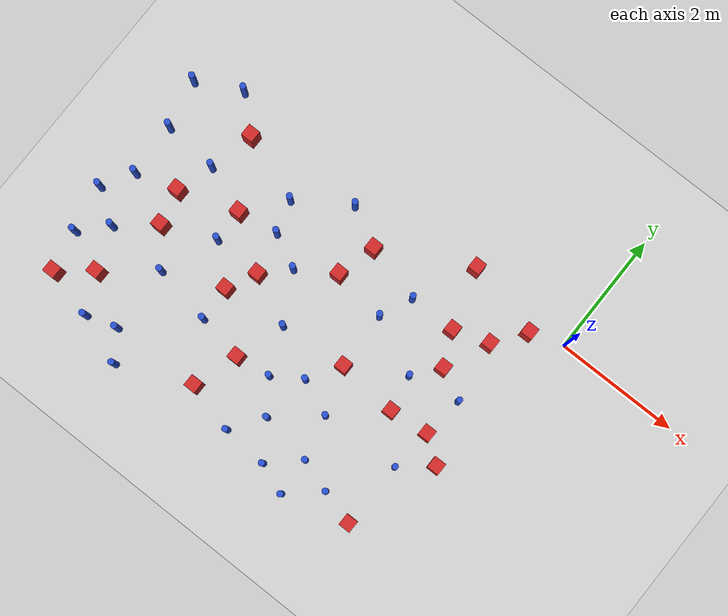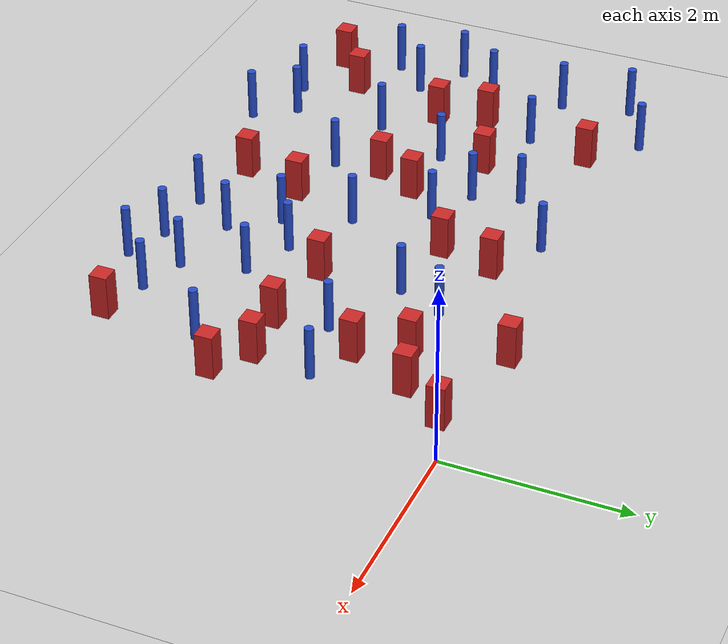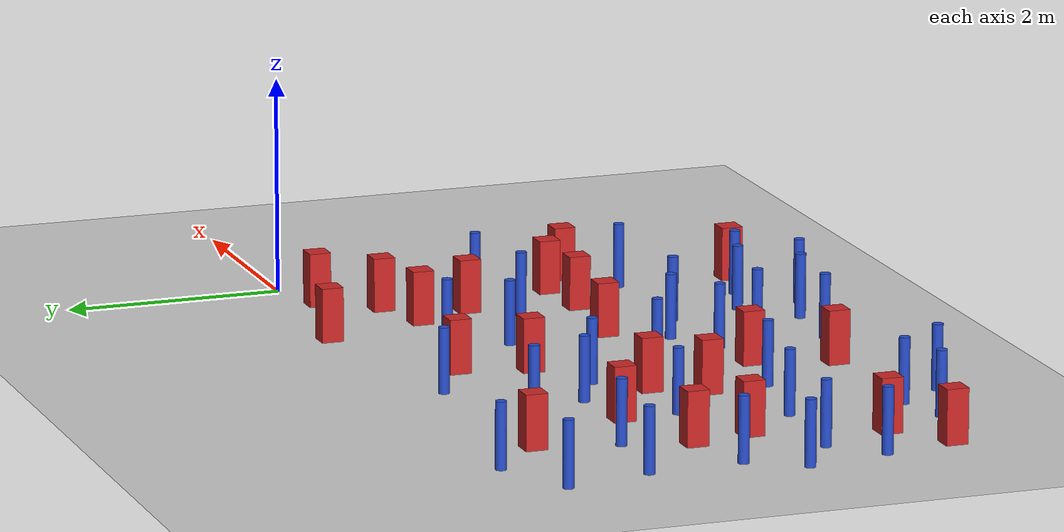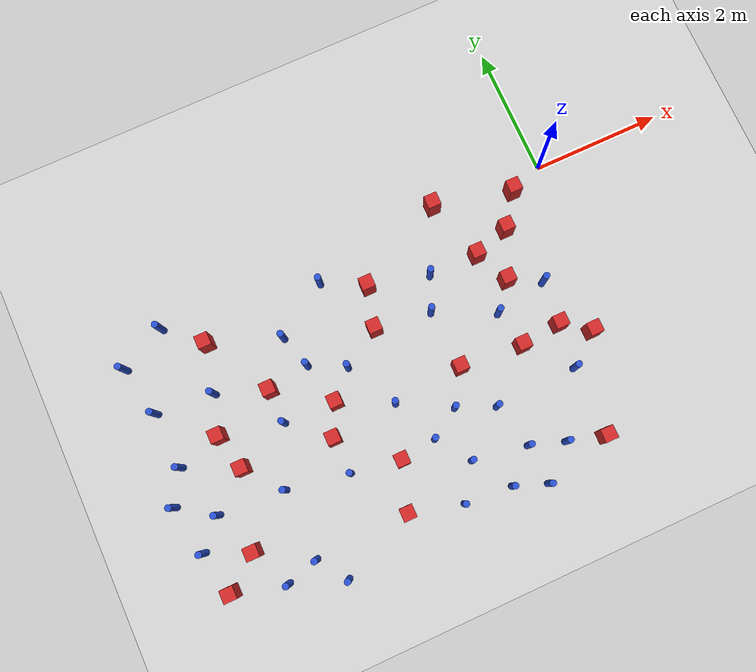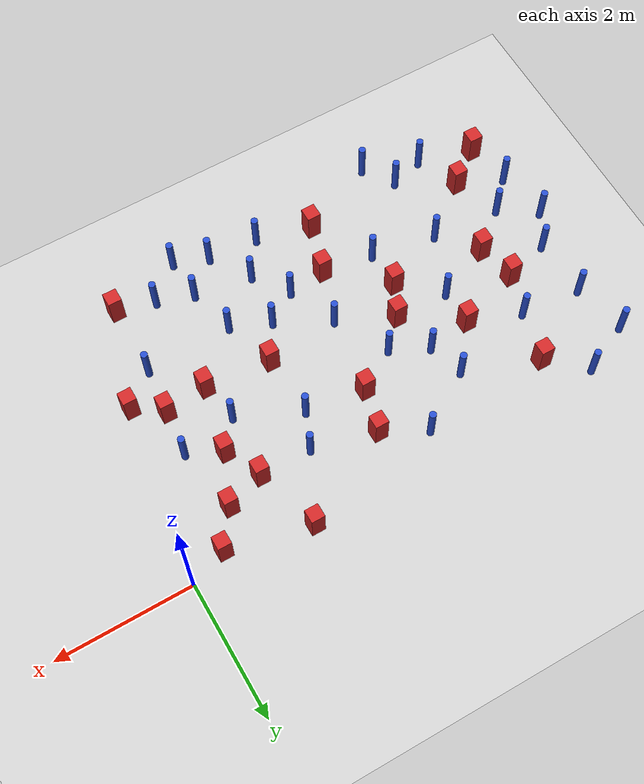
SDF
<sdf version="1.6">
 <world name="default">
  <model name="ground_plane">
   <static>1</static>
   <link name="link">
    <collision name="collision">
     <geometry><plane><normal>0 0 1</normal><size>100 100</size></plane></geometry>
     <surface><friction><ode><mu>100</mu><mu2>50</mu2></ode></friction></surface>
    </collision>
    <visual name="visual">
     <cast_shadows>0</cast_shadows>
     <geometry><plane><normal>0 0 1</normal><size>100 100</size></plane></geometry>
     <material>
      <ambient>1.0 1.0 1.0 1.0</ambient>
      <diffuse>0.8 0.8 0.8 1.0</diffuse>
      <specular>0.01 0.01 0.01 1.000000</specular>
     </material>
    </visual>
   </link>
  </model>
  <model name="pole_obstacle1">
   <static>true</static>
   <pose>-2.15343908815 -3.05800614078 -3.09024884793e-07 -7.19054271912e-07 -2.11315075144e-07 -1.93935509271e-07</pose>
   <link name="link">
    <pose>0 0 0.3 0 -0 0</pose>
    <inertial>
     <mass>1</mass>
     <inertia><ixx>0.145833</ixx><ixy>0</ixy><ixz>0</ixz><iyy>0.145833</iyy><iyz>0</iyz><izz>0.125</izz></inertia>
    </inertial>
    <collision name="collision">
     <geometry><cylinder><radius>0.05</radius><length>.6</length></cylinder></geometry>
    </collision>
    <visual name="visual">
     <geometry><cylinder><radius>0.05</radius><length>.6</length></cylinder></geometry>
     <material>
      <script><name>Gazebo/Blue</name><uri>file://media/materials/scripts/gazebo.material</uri></script>
     </material>
    </visual>
   </link>
  </model>
  <model name="pole_obstacle4">
   <static>true</static>
   <pose>-5.84009545535 -1.18611742266 -3.09024884793e-07 -7.19054271912e-07 -2.11315075124e-07 -1.93935509261e-07</pose>
   <link name="link">
    <pose>0 0 0.3 0 -0 0</pose>
    <inertial>
     <mass>1</mass>
     <inertia><ixx>0.145833</ixx><ixy>0</ixy><ixz>0</ixz><iyy>0.145833</iyy><iyz>0</iyz><izz>0.125</izz></inertia>
    </inertial>
    <collision name="collision">
     <geometry><cylinder><radius>0.05</radius><length>.6</length></cylinder></geometry>
    </collision>
    <visual name="visual">
     <geometry><cylinder><radius>0.05</radius><length>.6</length></cylinder></geometry>
     <material>
      <script><name>Gazebo/Blue</name><uri>file://media/materials/scripts/gazebo.material</uri></script>
     </material>
    </visual>
   </link>
  </model>
  <model name="square_post_obstacle3">
   <static>true</static>
   <pose>-1.75697244026 0.0820095088435 -4.36207812815e-07 3.75137919937e-06 9.77721102514e-07 2.47381364184e-05</pose>
   <link name="link">
    <pose>0 0 0.25 0 -0 0</pose>
    <inertial>
     <mass>100</mass>
     <inertia>
      <ixx>0.166667</ixx>
      <ixy>0</ixy>
      <ixz>0</ixz>
      <iyy>0.166667</iyy>
      <iyz>0</iyz>
      <izz>0.166667</izz>
     </inertia>
    </inertial>
    <collision name="collision"><geometry><box><size>.2 .2 .5</size></box></geometry></collision>
    <visual name="visual">
     <geometry><box><size>.2 .2 .5</size></box></geometry>
     <material>
      <script><name>Gazebo/Red</name><uri>file://media/materials/scripts/gazebo.material</uri></script>
     </material>
    </visual>
   </link>
  </model>
  <model name="square_post_obstacle6">
   <static>true</static>
   <pose>-3.31438618754 -1.2716206285 -4.36207812815e-07 3.75137919937e-06 9.77721102514e-07 2.47381364184e-05</pose>
   <link name="link">
    <pose>0 0 0.25 0 -0 0</pose>
    <inertial>
     <mass>100</mass>
     <inertia>
      <ixx>0.166667</ixx>
      <ixy>0</ixy>
      <ixz>0</ixz>
      <iyy>0.166667</iyy>
      <iyz>0</iyz>
      <izz>0.166667</izz>
     </inertia>
    </inertial>
    <collision name="collision"><geometry><box><size>.2 .2 .5</size></box></geometry></collision>
    <visual name="visual">
     <geometry><box><size>.2 .2 .5</size></box></geometry>
     <material>
      <script><name>Gazebo/Red</name><uri>file://media/materials/scripts/gazebo.material</uri></script>
     </material>
    </visual>
   </link>
  </model>
  <model name="pole_obstacle11">
   <static>true</static>
   <pose>-6.18619844787 0.0251924821739 -3.09024884793e-07 -7.19054271912e-07 -2.11315075117e-07 -1.93935509257e-07</pose>
   <link name="link">
    <pose>0 0 0.3 0 -0 0</pose>
    <inertial>
     <mass>1</mass>
     <inertia><ixx>0.145833</ixx><ixy>0</ixy><ixz>0</ixz><iyy>0.145833</iyy><iyz>0</iyz><izz>0.125</izz></inertia>
    </inertial>
    <collision name="collision">
     <geometry><cylinder><radius>0.05</radius><length>.6</length></cylinder></geometry>
    </collision>
    <visual name="visual">
     <geometry><cylinder><radius>0.05</radius><length>.6</length></cylinder></geometry>
     <material>
      <script><name>Gazebo/Blue</name><uri>file://media/materials/scripts/gazebo.material</uri></script>
     </material>
    </visual>
   </link>
  </model>
  <model name="square_post_obstacle8">
   <static>true</static>
   <pose>-3.14900808988 -0.646074387854 -4.36207812815e-07 3.75137919937e-06 9.77721102514e-07 2.47381364184e-05</pose>
   <link name="link">
    <pose>0 0 0.25 0 -0 0</pose>
    <inertial>
     <mass>100</mass>
     <inertia>
      <ixx>0.166667</ixx>
      <ixy>0</ixy>
      <ixz>0</ixz>
      <iyy>0.166667</iyy>
      <iyz>0</iyz>
      <izz>0.166667</izz>
     </inertia>
    </inertial>
    <collision name="collision"><geometry><box><size>.2 .2 .5</size></box></geometry></collision>
    <visual name="visual">
     <geometry><box><size>.2 .2 .5</size></box></geometry>
     <material>
      <script><name>Gazebo/Red</name><uri>file://media/materials/scripts/gazebo.material</uri></script>
     </material>
    </visual>
   </link>
  </model>
  <model name="pole_obstacle27">
   <static>true</static>
   <pose>-5.43413216333 -2.88898753709 -3.09024884793e-07 -7.19054271912e-07 -2.11315075144e-07 -1.93935509269e-07</pose>
   <link name="link">
    <pose>0 0 0.3 0 -0 0</pose>
    <inertial>
     <mass>1</mass>
     <inertia><ixx>0.145833</ixx><ixy>0</ixy><ixz>0</ixz><iyy>0.145833</iyy><iyz>0</iyz><izz>0.125</izz></inertia>
    </inertial>
    <collision name="collision">
     <geometry><cylinder><radius>0.05</radius><length>.6</length></cylinder></geometry>
    </collision>
    <visual name="visual">
     <geometry><cylinder><radius>0.05</radius><length>.6</length></cylinder></geometry>
     <material>
      <script><name>Gazebo/Blue</name><uri>file://media/materials/scripts/gazebo.material</uri></script>
     </material>
    </visual>
   </link>
  </model>
  <model name="pole_obstacle28">
   <static>true</static>
   <pose>-0.87431272571 -3.01375302715 -3.09024884793e-07 -7.19054271912e-07 -2.11315075129e-07 -1.93935509263e-07</pose>
   <link name="link">
    <pose>0 0 0.3 0 -0 0</pose>
    <inertial>
     <mass>1</mass>
     <inertia><ixx>0.145833</ixx><ixy>0</ixy><ixz>0</ixz><iyy>0.145833</iyy><iyz>0</iyz><izz>0.125</izz></inertia>
    </inertial>
    <collision name="collision">
     <geometry><cylinder><radius>0.05</radius><length>.6</length></cylinder></geometry>
    </collision>
    <visual name="visual">
     <geometry><cylinder><radius>0.05</radius><length>.6</length></cylinder></geometry>
     <material>
      <script><name>Gazebo/Blue</name><uri>file://media/materials/scripts/gazebo.material</uri></script>
     </material>
    </visual>
   </link>
  </model>
  <model name="square_post_obstacle19">
   <static>true</static>
   <pose>-1.43632241854 -2.39237902163 -4.36207812815e-07 3.75137919937e-06 9.77721102514e-07 2.47381364184e-05</pose>
   <link name="link">
    <pose>0 0 0.25 0 -0 0</pose>
    <inertial>
     <mass>100</mass>
     <inertia>
      <ixx>0.166667</ixx>
      <ixy>0</ixy>
      <ixz>0</ixz>
      <iyy>0.166667</iyy>
      <iyz>0</iyz>
      <izz>0.166667</izz>
     </inertia>
    </inertial>
    <collision name="collision"><geometry><box><size>.2 .2 .5</size></box></geometry></collision>
    <visual name="visual">
     <geometry><box><size>.2 .2 .5</size></box></geometry>
     <material>
      <script><name>Gazebo/Red</name><uri>file://media/materials/scripts/gazebo.material</uri></script>
     </material>
    </visual>
   </link>
  </model>
  <model name="square_post_obstacle20">
   <static>true</static>
   <pose>-3.73517956588 -3.18736815768 -4.36207812815e-07 3.75137919937e-06 9.77721102514e-07 2.47381364184e-05</pose>
   <link name="link">
    <pose>0 0 0.25 0 -0 0</pose>
    <inertial>
     <mass>100</mass>
     <inertia>
      <ixx>0.166667</ixx>
      <ixy>0</ixy>
      <ixz>0</ixz>
      <iyy>0.166667</iyy>
      <iyz>0</iyz>
      <izz>0.166667</izz>
     </inertia>
    </inertial>
    <collision name="collision"><geometry><box><size>.2 .2 .5</size></box></geometry></collision>
    <visual name="visual">
     <geometry><box><size>.2 .2 .5</size></box></geometry>
     <material>
      <script><name>Gazebo/Red</name><uri>file://media/materials/scripts/gazebo.material</uri></script>
     </material>
    </visual>
   </link>
  </model>
  <model name="square_post_obstacle23">
   <static>true</static>
   <pose>-4.27425139784 -2.02532687391 -4.36207812815e-07 3.75137919937e-06 9.77721102514e-07 2.47381364184e-05</pose>
   <link name="link">
    <pose>0 0 0.25 0 -0 0</pose>
    <inertial>
     <mass>100</mass>
     <inertia>
      <ixx>0.166667</ixx>
      <ixy>0</ixy>
      <ixz>0</ixz>
      <iyy>0.166667</iyy>
      <iyz>0</iyz>
      <izz>0.166667</izz>
     </inertia>
    </inertial>
    <collision name="collision"><geometry><box><size>.2 .2 .5</size></box></geometry></collision>
    <visual name="visual">
     <geometry><box><size>.2 .2 .5</size></box></geometry>
     <material>
      <script><name>Gazebo/Red</name><uri>file://media/materials/scripts/gazebo.material</uri></script>
     </material>
    </visual>
   </link>
  </model>
  <model name="square_post_obstacle30">
   <static>true</static>
   <pose>-1.22073646992 -1.41158479234 -4.36207812815e-07 3.75137919937e-06 9.77721102514e-07 2.47381364184e-05</pose>
   <link name="link">
    <pose>0 0 0.25 0 -0 0</pose>
    <inertial>
     <mass>100</mass>
     <inertia>
      <ixx>0.166667</ixx>
      <ixy>0</ixy>
      <ixz>0</ixz>
      <iyy>0.166667</iyy>
      <iyz>0</iyz>
      <izz>0.166667</izz>
     </inertia>
    </inertial>
    <collision name="collision"><geometry><box><size>.2 .2 .5</size></box></geometry></collision>
    <visual name="visual">
     <geometry><box><size>.2 .2 .5</size></box></geometry>
     <material>
      <script><name>Gazebo/Red</name><uri>file://media/materials/scripts/gazebo.material</uri></script>
     </material>
    </visual>
   </link>
  </model>
  <model name="pole_obstacle42">
   <static>true</static>
   <pose>-5.41304092149 -3.96565275115 -3.09024884793e-07 -7.19054271912e-07 -2.11315075139e-07 -1.93935509266e-07</pose>
   <link name="link">
    <pose>0 0 0.3 0 -0 0</pose>
    <inertial>
     <mass>1</mass>
     <inertia><ixx>0.145833</ixx><ixy>0</ixy><ixz>0</ixz><iyy>0.145833</iyy><iyz>0</iyz><izz>0.125</izz></inertia>
    </inertial>
    <collision name="collision">
     <geometry><cylinder><radius>0.05</radius><length>.6</length></cylinder></geometry>
    </collision>
    <visual name="visual">
     <geometry><cylinder><radius>0.05</radius><length>.6</length></cylinder></geometry>
     <material>
      <script><name>Gazebo/Blue</name><uri>file://media/materials/scripts/gazebo.material</uri></script>
     </material>
    </visual>
   </link>
  </model>
  <model name="square_post_obstacle32">
   <static>true</static>
   <pose>-0.547999389112 -0.199466882305 -4.36207812815e-07 3.75137919937e-06 9.77721102514e-07 2.47381364184e-05</pose>
   <link name="link">
    <pose>0 0 0.25 0 -0 0</pose>
    <inertial>
     <mass>100</mass>
     <inertia>
      <ixx>0.166667</ixx>
      <ixy>0</ixy>
      <ixz>0</ixz>
      <iyy>0.166667</iyy>
      <iyz>0</iyz>
      <izz>0.166667</izz>
     </inertia>
    </inertial>
    <collision name="collision"><geometry><box><size>.2 .2 .5</size></box></geometry></collision>
    <visual name="visual">
     <geometry><box><size>.2 .2 .5</size></box></geometry>
     <material>
      <script><name>Gazebo/Red</name><uri>file://media/materials/scripts/gazebo.material</uri></script>
     </material>
    </visual>
   </link>
  </model>
  <model name="square_post_obstacle34">
   <static>true</static>
   <pose>-2.40266135204 -2.30965475225 -4.36207812815e-07 3.75137919937e-06 9.77721102514e-07 2.47381364184e-05</pose>
   <link name="link">
    <pose>0 0 0.25 0 -0 0</pose>
    <inertial>
     <mass>100</mass>
     <inertia>
      <ixx>0.166667</ixx>
      <ixy>0</ixy>
      <ixz>0</ixz>
      <iyy>0.166667</iyy>
      <iyz>0</iyz>
      <izz>0.166667</izz>
     </inertia>
    </inertial>
    <collision name="collision"><geometry><box><size>.2 .2 .5</size></box></geometry></collision>
    <visual name="visual">
     <geometry><box><size>.2 .2 .5</size></box></geometry>
     <material>
      <script><name>Gazebo/Red</name><uri>file://media/materials/scripts/gazebo.material</uri></script>
     </material>
    </visual>
   </link>
  </model>
  <model name="pole_obstacle49">
   <static>true</static>
   <pose>-3.17294523156 -4.12871011493 -3.09024884793e-07 -7.19054271912e-07 -2.11315075134e-07 -1.93935509266e-07</pose>
   <link name="link">
    <pose>0 0 0.3 0 -0 0</pose>
    <inertial>
     <mass>1</mass>
     <inertia><ixx>0.145833</ixx><ixy>0</ixy><ixz>0</ixz><iyy>0.145833</iyy><iyz>0</iyz><izz>0.125</izz></inertia>
    </inertial>
    <collision name="collision">
     <geometry><cylinder><radius>0.05</radius><length>.6</length></cylinder></geometry>
    </collision>
    <visual name="visual">
     <geometry><cylinder><radius>0.05</radius><length>.6</length></cylinder></geometry>
     <material>
      <script><name>Gazebo/Blue</name><uri>file://media/materials/scripts/gazebo.material</uri></script>
     </material>
    </visual>
   </link>
  </model>
  <model name="square_post_obstacle41">
   <static>true</static>
   <pose>-6.68817704176 -3.88866527212 -4.36207812815e-07 3.75137919937e-06 9.77721102514e-07 2.47381364184e-05</pose>
   <link name="link">
    <pose>0 0 0.25 0 -0 0</pose>
    <inertial>
     <mass>100</mass>
     <inertia>
      <ixx>0.166667</ixx>
      <ixy>0</ixy>
      <ixz>0</ixz>
      <iyy>0.166667</iyy>
      <iyz>0</iyz>
      <izz>0.166667</izz>
     </inertia>
    </inertial>
    <collision name="collision"><geometry><box><size>.2 .2 .5</size></box></geometry></collision>
    <visual name="visual">
     <geometry><box><size>.2 .2 .5</size></box></geometry>
     <material>
      <script><name>Gazebo/Red</name><uri>file://media/materials/scripts/gazebo.material</uri></script>
     </material>
    </visual>
   </link>
  </model>
  <model name="pole_obstacle55">
   <static>true</static>
   <pose>-5.9029251032 -4.10988672549 -3.09024884793e-07 -7.19054271911e-07 -2.1131507516e-07 -1.93935509277e-07</pose>
   <link name="link">
    <pose>0 0 0.3 0 -0 0</pose>
    <inertial>
     <mass>1</mass>
     <inertia><ixx>0.145833</ixx><ixy>0</ixy><ixz>0</ixz><iyy>0.145833</iyy><iyz>0</iyz><izz>0.125</izz></inertia>
    </inertial>
    <collision name="collision">
     <geometry><cylinder><radius>0.05</radius><length>.6</length></cylinder></geometry>
    </collision>
    <visual name="visual">
     <geometry><cylinder><radius>0.05</radius><length>.6</length></cylinder></geometry>
     <material>
      <script><name>Gazebo/Blue</name><uri>file://media/materials/scripts/gazebo.material</uri></script>
     </material>
    </visual>
   </link>
  </model>
  <model name="pole_obstacle59">
   <static>true</static>
   <pose>-3.77444383196 -0.305682701676 -3.09024884793e-07 -7.19054271912e-07 -2.1131507512e-07 -1.93935509259e-07</pose>
   <link name="link">
    <pose>0 0 0.3 0 -0 0</pose>
    <inertial>
     <mass>1</mass>
     <inertia><ixx>0.145833</ixx><ixy>0</ixy><ixz>0</ixz><iyy>0.145833</iyy><iyz>0</iyz><izz>0.125</izz></inertia>
    </inertial>
    <collision name="collision">
     <geometry><cylinder><radius>0.05</radius><length>.6</length></cylinder></geometry>
    </collision>
    <visual name="visual">
     <geometry><cylinder><radius>0.05</radius><length>.6</length></cylinder></geometry>
     <material>
      <script><name>Gazebo/Blue</name><uri>file://media/materials/scripts/gazebo.material</uri></script>
     </material>
    </visual>
   </link>
  </model>
  <model name="square_post_obstacle51">
   <static>true</static>
   <pose>-5.0802698294 -1.47074670768 -4.36207812815e-07 3.75137919937e-06 9.77721102514e-07 2.47381364184e-05</pose>
   <link name="link">
    <pose>0 0 0.25 0 -0 0</pose>
    <inertial>
     <mass>100</mass>
     <inertia>
      <ixx>0.166667</ixx>
      <ixy>0</ixy>
      <ixz>0</ixz>
      <iyy>0.166667</iyy>
      <iyz>0</iyz>
      <izz>0.166667</izz>
     </inertia>
    </inertial>
    <collision name="collision"><geometry><box><size>.2 .2 .5</size></box></geometry></collision>
    <visual name="visual">
     <geometry><box><size>.2 .2 .5</size></box></geometry>
     <material>
      <script><name>Gazebo/Red</name><uri>file://media/materials/scripts/gazebo.material</uri></script>
     </material>
    </visual>
   </link>
  </model>
  <model name="pole_obstacle69">
   <static>true</static>
   <pose>-3.90394910344 -1.63506042551 -3.09024884793e-07 -7.19054271911e-07 -2.11315075167e-07 -1.93935509283e-07</pose>
   <link name="link">
    <pose>0 0 0.3 0 -0 0</pose>
    <inertial>
     <mass>1</mass>
     <inertia><ixx>0.145833</ixx><ixy>0</ixy><ixz>0</ixz><iyy>0.145833</iyy><iyz>0</iyz><izz>0.125</izz></inertia>
    </inertial>
    <collision name="collision">
     <geometry><cylinder><radius>0.05</radius><length>.6</length></cylinder></geometry>
    </collision>
    <visual name="visual">
     <geometry><cylinder><radius>0.05</radius><length>.6</length></cylinder></geometry>
     <material>
      <script><name>Gazebo/Blue</name><uri>file://media/materials/scripts/gazebo.material</uri></script>
     </material>
    </visual>
   </link>
  </model>
  <model name="pole_obstacle73">
   <static>true</static>
   <pose>-1.94683605005 -4.36961876161 -3.09024884793e-07 -7.19054271912e-07 -2.11315075134e-07 -1.93935509265e-07</pose>
   <link name="link">
    <pose>0 0 0.3 0 -0 0</pose>
    <inertial>
     <mass>1</mass>
     <inertia><ixx>0.145833</ixx><ixy>0</ixy><ixz>0</ixz><iyy>0.145833</iyy><iyz>0</iyz><izz>0.125</izz></inertia>
    </inertial>
    <collision name="collision">
     <geometry><cylinder><radius>0.05</radius><length>.6</length></cylinder></geometry>
    </collision>
    <visual name="visual">
     <geometry><cylinder><radius>0.05</radius><length>.6</length></cylinder></geometry>
     <material>
      <script><name>Gazebo/Blue</name><uri>file://media/materials/scripts/gazebo.material</uri></script>
     </material>
    </visual>
   </link>
  </model>
  <model name="square_post_obstacle74">
   <static>true</static>
   <pose>-4.50741413669 -2.49631220821 -4.36207812815e-07 3.75137919937e-06 9.77721102514e-07 2.47381364184e-05</pose>
   <link name="link">
    <pose>0 0 0.25 0 -0 0</pose>
    <inertial>
     <mass>100</mass>
     <inertia>
      <ixx>0.166667</ixx>
      <ixy>0</ixy>
      <ixz>0</ixz>
      <iyy>0.166667</iyy>
      <iyz>0</iyz>
      <izz>0.166667</izz>
     </inertia>
    </inertial>
    <collision name="collision"><geometry><box><size>.2 .2 .5</size></box></geometry></collision>
    <visual name="visual">
     <geometry><box><size>.2 .2 .5</size></box></geometry>
     <material>
      <script><name>Gazebo/Red</name><uri>file://media/materials/scripts/gazebo.material</uri></script>
     </material>
    </visual>
   </link>
  </model>
  <model name="pole_obstacle90">
   <static>true</static>
   <pose>-6.44750897837 -2.81750973111 -3.09024884793e-07 -7.19054271912e-07 -2.11315075144e-07 -1.93935509269e-07</pose>
   <link name="link">
    <pose>0 0 0.3 0 -0 0</pose>
    <inertial>
     <mass>1</mass>
     <inertia><ixx>0.145833</ixx><ixy>0</ixy><ixz>0</ixz><iyy>0.145833</iyy><iyz>0</iyz><izz>0.125</izz></inertia>
    </inertial>
    <collision name="collision">
     <geometry><cylinder><radius>0.05</radius><length>.6</length></cylinder></geometry>
    </collision>
    <visual name="visual">
     <geometry><cylinder><radius>0.05</radius><length>.6</length></cylinder></geometry>
     <material>
      <script><name>Gazebo/Blue</name><uri>file://media/materials/scripts/gazebo.material</uri></script>
     </material>
    </visual>
   </link>
  </model>
  <model name="square_post_obstacle84">
   <static>true</static>
   <pose>-6.01252490544 -1.78346738048 -4.36207812815e-07 3.75137919937e-06 9.77721102514e-07 2.47381364184e-05</pose>
   <link name="link">
    <pose>0 0 0.25 0 -0 0</pose>
    <inertial>
     <mass>100</mass>
     <inertia>
      <ixx>0.166667</ixx>
      <ixy>0</ixy>
      <ixz>0</ixz>
      <iyy>0.166667</iyy>
      <iyz>0</iyz>
      <izz>0.166667</izz>
     </inertia>
    </inertial>
    <collision name="collision"><geometry><box><size>.2 .2 .5</size></box></geometry></collision>
    <visual name="visual">
     <geometry><box><size>.2 .2 .5</size></box></geometry>
     <material>
      <script><name>Gazebo/Red</name><uri>file://media/materials/scripts/gazebo.material</uri></script>
     </material>
    </visual>
   </link>
  </model>
  <model name="pole_obstacle91">
   <static>true</static>
   <pose>-4.59317232311 -0.844816008396 -3.09024884793e-07 -7.19054271912e-07 -2.11315075134e-07 -1.93935509265e-07</pose>
   <link name="link">
    <pose>0 0 0.3 0 -0 0</pose>
    <inertial>
     <mass>1</mass>
     <inertia><ixx>0.145833</ixx><ixy>0</ixy><ixz>0</ixz><iyy>0.145833</iyy><iyz>0</iyz><izz>0.125</izz></inertia>
    </inertial>
    <collision name="collision">
     <geometry><cylinder><radius>0.05</radius><length>.6</length></cylinder></geometry>
    </collision>
    <visual name="visual">
     <geometry><cylinder><radius>0.05</radius><length>.6</length></cylinder></geometry>
     <material>
      <script><name>Gazebo/Blue</name><uri>file://media/materials/scripts/gazebo.material</uri></script>
     </material>
    </visual>
   </link>
  </model>
  <model name="pole_obstacle96">
   <static>true</static>
   <pose>-1.97897196527 -3.75632831261 -3.09024884793e-07 -7.19054271912e-07 -2.11315075118e-07 -1.93935509257e-07</pose>
   <link name="link">
    <pose>0 0 0.3 0 -0 0</pose>
    <inertial>
     <mass>1</mass>
     <inertia><ixx>0.145833</ixx><ixy>0</ixy><ixz>0</ixz><iyy>0.145833</iyy><iyz>0</iyz><izz>0.125</izz></inertia>
    </inertial>
    <collision name="collision">
     <geometry><cylinder><radius>0.05</radius><length>.6</length></cylinder></geometry>
    </collision>
    <visual name="visual">
     <geometry><cylinder><radius>0.05</radius><length>.6</length></cylinder></geometry>
     <material>
      <script><name>Gazebo/Blue</name><uri>file://media/materials/scripts/gazebo.material</uri></script>
     </material>
    </visual>
   </link>
  </model>
  <model name="pole_obstacle97">
   <static>true</static>
   <pose>-4.48643740166 -3.0601002115 -3.09024884793e-07 -7.19054271912e-07 -2.11315075144e-07 -1.93935509269e-07</pose>
   <link name="link">
    <pose>0 0 0.3 0 -0 0</pose>
    <inertial>
     <mass>1</mass>
     <inertia><ixx>0.145833</ixx><ixy>0</ixy><ixz>0</ixz><iyy>0.145833</iyy><iyz>0</iyz><izz>0.125</izz></inertia>
    </inertial>
    <collision name="collision">
     <geometry><cylinder><radius>0.05</radius><length>.6</length></cylinder></geometry>
    </collision>
    <visual name="visual">
     <geometry><cylinder><radius>0.05</radius><length>.6</length></cylinder></geometry>
     <material>
      <script><name>Gazebo/Blue</name><uri>file://media/materials/scripts/gazebo.material</uri></script>
     </material>
    </visual>
   </link>
  </model>
  <model name="pole_obstacle110">
   <static>true</static>
   <pose>-5.10462957122 -4.40690233673 -3.09024884793e-07 -7.19054271911e-07 -2.1131507516e-07 -1.93935509277e-07</pose>
   <link name="link">
    <pose>0 0 0.3 0 -0 0</pose>
    <inertial>
     <mass>1</mass>
     <inertia><ixx>0.145833</ixx><ixy>0</ixy><ixz>0</ixz><iyy>0.145833</iyy><iyz>0</iyz><izz>0.125</izz></inertia>
    </inertial>
    <collision name="collision">
     <geometry><cylinder><radius>0.05</radius><length>.6</length></cylinder></geometry>
    </collision>
    <visual name="visual">
     <geometry><cylinder><radius>0.05</radius><length>.6</length></cylinder></geometry>
     <material>
      <script><name>Gazebo/Blue</name><uri>file://media/materials/scripts/gazebo.material</uri></script>
     </material>
    </visual>
   </link>
  </model>
  <model name="pole_obstacle114">
   <static>true</static>
   <pose>-2.72292676908 -2.82235458613 -3.09024884793e-07 -7.19054271912e-07 -2.11315075144e-07 -1.93935509271e-07</pose>
   <link name="link">
    <pose>0 0 0.3 0 -0 0</pose>
    <inertial>
     <mass>1</mass>
     <inertia><ixx>0.145833</ixx><ixy>0</ixy><ixz>0</ixz><iyy>0.145833</iyy><iyz>0</iyz><izz>0.125</izz></inertia>
    </inertial>
    <collision name="collision">
     <geometry><cylinder><radius>0.05</radius><length>.6</length></cylinder></geometry>
    </collision>
    <visual name="visual">
     <geometry><cylinder><radius>0.05</radius><length>.6</length></cylinder></geometry>
     <material>
      <script><name>Gazebo/Blue</name><uri>file://media/materials/scripts/gazebo.material</uri></script>
     </material>
    </visual>
   </link>
  </model>
  <model name="square_post_obstacle117">
   <static>true</static>
   <pose>-6.18243547386 -3.49606045639 -4.36207812815e-07 3.75137919937e-06 9.77721102514e-07 2.47381364184e-05</pose>
   <link name="link">
    <pose>0 0 0.25 0 -0 0</pose>
    <inertial>
     <mass>100</mass>
     <inertia>
      <ixx>0.166667</ixx>
      <ixy>0</ixy>
      <ixz>0</ixz>
      <iyy>0.166667</iyy>
      <iyz>0</iyz>
      <izz>0.166667</izz>
     </inertia>
    </inertial>
    <collision name="collision"><geometry><box><size>.2 .2 .5</size></box></geometry></collision>
    <visual name="visual">
     <geometry><box><size>.2 .2 .5</size></box></geometry>
     <material>
      <script><name>Gazebo/Red</name><uri>file://media/materials/scripts/gazebo.material</uri></script>
     </material>
    </visual>
   </link>
  </model>
  <model name="square_post_obstacle125">
   <static>true</static>
   <pose>-3.96503305612 -3.90934978381 -4.36207812815e-07 3.75137919937e-06 9.77721102514e-07 2.47381364184e-05</pose>
   <link name="link">
    <pose>0 0 0.25 0 -0 0</pose>
    <inertial>
     <mass>100</mass>
     <inertia>
      <ixx>0.166667</ixx>
      <ixy>0</ixy>
      <ixz>0</ixz>
      <iyy>0.166667</iyy>
      <iyz>0</iyz>
      <izz>0.166667</izz>
     </inertia>
    </inertial>
    <collision name="collision"><geometry><box><size>.2 .2 .5</size></box></geometry></collision>
    <visual name="visual">
     <geometry><box><size>.2 .2 .5</size></box></geometry>
     <material>
      <script><name>Gazebo/Red</name><uri>file://media/materials/scripts/gazebo.material</uri></script>
     </material>
    </visual>
   </link>
  </model>
  <model name="pole_obstacle131">
   <static>true</static>
   <pose>-6.72513638817 -1.10549105643 -3.09024884793e-07 -7.19054271912e-07 -2.11315075124e-07 -1.93935509261e-07</pose>
   <link name="link">
    <pose>0 0 0.3 0 -0 0</pose>
    <inertial>
     <mass>1</mass>
     <inertia><ixx>0.145833</ixx><ixy>0</ixy><ixz>0</ixz><iyy>0.145833</iyy><iyz>0</iyz><izz>0.125</izz></inertia>
    </inertial>
    <collision name="collision">
     <geometry><cylinder><radius>0.05</radius><length>.6</length></cylinder></geometry>
    </collision>
    <visual name="visual">
     <geometry><cylinder><radius>0.05</radius><length>.6</length></cylinder></geometry>
     <material>
      <script><name>Gazebo/Blue</name><uri>file://media/materials/scripts/gazebo.material</uri></script>
     </material>
    </visual>
   </link>
  </model>
  <model name="square_post_obstacle132">
   <static>true</static>
   <pose>-0.9022497993 -4.08404158674 -4.36207812815e-07 3.75137919937e-06 9.77721102514e-07 2.47381364184e-05</pose>
   <link name="link">
    <pose>0 0 0.25 0 -0 0</pose>
    <inertial>
     <mass>100</mass>
     <inertia>
      <ixx>0.166667</ixx>
      <ixy>0</ixy>
      <ixz>0</ixz>
      <iyy>0.166667</iyy>
      <iyz>0</iyz>
      <izz>0.166667</izz>
     </inertia>
    </inertial>
    <collision name="collision"><geometry><box><size>.2 .2 .5</size></box></geometry></collision>
    <visual name="visual">
     <geometry><box><size>.2 .2 .5</size></box></geometry>
     <material>
      <script><name>Gazebo/Red</name><uri>file://media/materials/scripts/gazebo.material</uri></script>
     </material>
    </visual>
   </link>
  </model>
  <model name="pole_obstacle138">
   <static>true</static>
   <pose>-2.44760402048 -1.38975098354 -3.09024884793e-07 -7.19054271912e-07 -2.11315075122e-07 -1.93935509259e-07</pose>
   <link name="link">
    <pose>0 0 0.3 0 -0 0</pose>
    <inertial>
     <mass>1</mass>
     <inertia><ixx>0.145833</ixx><ixy>0</ixy><ixz>0</ixz><iyy>0.145833</iyy><iyz>0</iyz><izz>0.125</izz></inertia>
    </inertial>
    <collision name="collision">
     <geometry><cylinder><radius>0.05</radius><length>.6</length></cylinder></geometry>
    </collision>
    <visual name="visual">
     <geometry><cylinder><radius>0.05</radius><length>.6</length></cylinder></geometry>
     <material>
      <script><name>Gazebo/Blue</name><uri>file://media/materials/scripts/gazebo.material</uri></script>
     </material>
    </visual>
   </link>
  </model>
  <model name="pole_obstacle139">
   <static>true</static>
   <pose>-3.48359362346 -2.4048561705 -3.09024884793e-07 -7.19054271912e-07 -2.11315075144e-07 -1.93935509271e-07</pose>
   <link name="link">
    <pose>0 0 0.3 0 -0 0</pose>
    <inertial>
     <mass>1</mass>
     <inertia><ixx>0.145833</ixx><ixy>0</ixy><ixz>0</ixz><iyy>0.145833</iyy><iyz>0</iyz><izz>0.125</izz></inertia>
    </inertial>
    <collision name="collision">
     <geometry><cylinder><radius>0.05</radius><length>.6</length></cylinder></geometry>
    </collision>
    <visual name="visual">
     <geometry><cylinder><radius>0.05</radius><length>.6</length></cylinder></geometry>
     <material>
      <script><name>Gazebo/Blue</name><uri>file://media/materials/scripts/gazebo.material</uri></script>
     </material>
    </visual>
   </link>
  </model>
  <model name="pole_obstacle151">
   <static>true</static>
   <pose>-3.1777536966 -3.11430848877 -3.09024884793e-07 -7.19054271912e-07 -2.11315075144e-07 -1.93935509271e-07</pose>
   <link name="link">
    <pose>0 0 0.3 0 -0 0</pose>
    <inertial>
     <mass>1</mass>
     <inertia><ixx>0.145833</ixx><ixy>0</ixy><ixz>0</ixz><iyy>0.145833</iyy><iyz>0</iyz><izz>0.125</izz></inertia>
    </inertial>
    <collision name="collision">
     <geometry><cylinder><radius>0.05</radius><length>.6</length></cylinder></geometry>
    </collision>
    <visual name="visual">
     <geometry><cylinder><radius>0.05</radius><length>.6</length></cylinder></geometry>
     <material>
      <script><name>Gazebo/Blue</name><uri>file://media/materials/scripts/gazebo.material</uri></script>
     </material>
    </visual>
   </link>
  </model>
  <model name="square_post_obstacle147">
   <static>true</static>
   <pose>-0.809871113924 -2.3285331193 -4.36207812815e-07 3.75137919937e-06 9.77721102514e-07 2.47381364184e-05</pose>
   <link name="link">
    <pose>0 0 0.25 0 -0 0</pose>
    <inertial>
     <mass>100</mass>
     <inertia>
      <ixx>0.166667</ixx>
      <ixy>0</ixy>
      <ixz>0</ixz>
      <iyy>0.166667</iyy>
      <iyz>0</iyz>
      <izz>0.166667</izz>
     </inertia>
    </inertial>
    <collision name="collision"><geometry><box><size>.2 .2 .5</size></box></geometry></collision>
    <visual name="visual">
     <geometry><box><size>.2 .2 .5</size></box></geometry>
     <material>
      <script><name>Gazebo/Red</name><uri>file://media/materials/scripts/gazebo.material</uri></script>
     </material>
    </visual>
   </link>
  </model>
  <model name="pole_obstacle153">
   <static>true</static>
   <pose>-1.45498119235 -3.93072102574 -3.09024884793e-07 -7.19054271912e-07 -2.11315075132e-07 -1.93935509263e-07</pose>
   <link name="link">
    <pose>0 0 0.3 0 -0 0</pose>
    <inertial>
     <mass>1</mass>
     <inertia><ixx>0.145833</ixx><ixy>0</ixy><ixz>0</ixz><iyy>0.145833</iyy><iyz>0</iyz><izz>0.125</izz></inertia>
    </inertial>
    <collision name="collision">
     <geometry><cylinder><radius>0.05</radius><length>.6</length></cylinder></geometry>
    </collision>
    <visual name="visual">
     <geometry><cylinder><radius>0.05</radius><length>.6</length></cylinder></geometry>
     <material>
      <script><name>Gazebo/Blue</name><uri>file://media/materials/scripts/gazebo.material</uri></script>
     </material>
    </visual>
   </link>
  </model>
  <model name="square_post_obstacle152">
   <static>true</static>
   <pose>-1.46636692662 -0.878484229674 -4.36207812815e-07 3.75137919937e-06 9.77721102514e-07 2.47381364184e-05</pose>
   <link name="link">
    <pose>0 0 0.25 0 -0 0</pose>
    <inertial>
     <mass>100</mass>
     <inertia>
      <ixx>0.166667</ixx>
      <ixy>0</ixy>
      <ixz>0</ixz>
      <iyy>0.166667</iyy>
      <iyz>0</iyz>
      <izz>0.166667</izz>
     </inertia>
    </inertial>
    <collision name="collision"><geometry><box><size>.2 .2 .5</size></box></geometry></collision>
    <visual name="visual">
     <geometry><box><size>.2 .2 .5</size></box></geometry>
     <material>
      <script><name>Gazebo/Red</name><uri>file://media/materials/scripts/gazebo.material</uri></script>
     </material>
    </visual>
   </link>
  </model>
  <model name="pole_obstacle168">
   <static>true</static>
   <pose>-2.22562422036 -0.8712789385 -3.09024884793e-07 -7.19054271913e-07 -2.1131507512e-07 -1.93935509259e-07</pose>
   <link name="link">
    <pose>0 0 0.3 0 -0 0</pose>
    <inertial>
     <mass>1</mass>
     <inertia><ixx>0.145833</ixx><ixy>0</ixy><ixz>0</ixz><iyy>0.145833</iyy><iyz>0</iyz><izz>0.125</izz></inertia>
    </inertial>
    <collision name="collision">
     <geometry><cylinder><radius>0.05</radius><length>.6</length></cylinder></geometry>
    </collision>
    <visual name="visual">
     <geometry><cylinder><radius>0.05</radius><length>.6</length></cylinder></geometry>
     <material>
      <script><name>Gazebo/Blue</name><uri>file://media/materials/scripts/gazebo.material</uri></script>
     </material>
    </visual>
   </link>
  </model>
  <model name="pole_obstacle174">
   <static>true</static>
   <pose>-6.68468228123 -1.97304797103 -3.09024884793e-07 -7.19054271912e-07 -2.11315075115e-07 -1.93935509255e-07</pose>
   <link name="link">
    <pose>0 0 0.3 0 -0 0</pose>
    <inertial>
     <mass>1</mass>
     <inertia><ixx>0.145833</ixx><ixy>0</ixy><ixz>0</ixz><iyy>0.145833</iyy><iyz>0</iyz><izz>0.125</izz></inertia>
    </inertial>
    <collision name="collision">
     <geometry><cylinder><radius>0.05</radius><length>.6</length></cylinder></geometry>
    </collision>
    <visual name="visual">
     <geometry><cylinder><radius>0.05</radius><length>.6</length></cylinder></geometry>
     <material>
      <script><name>Gazebo/Blue</name><uri>file://media/materials/scripts/gazebo.material</uri></script>
     </material>
    </visual>
   </link>
  </model>
  <model name="square_post_obstacle179">
   <static>true</static>
   <pose>-5.87699405062 -2.34814883235 -4.36207812815e-07 3.75137919937e-06 9.77721102514e-07 2.47381364184e-05</pose>
   <link name="link">
    <pose>0 0 0.25 0 -0 0</pose>
    <inertial>
     <mass>100</mass>
     <inertia>
      <ixx>0.166667</ixx>
      <ixy>0</ixy>
      <ixz>0</ixz>
      <iyy>0.166667</iyy>
      <iyz>0</iyz>
      <izz>0.166667</izz>
     </inertia>
    </inertial>
    <collision name="collision"><geometry><box><size>.2 .2 .5</size></box></geometry></collision>
    <visual name="visual">
     <geometry><box><size>.2 .2 .5</size></box></geometry>
     <material>
      <script><name>Gazebo/Red</name><uri>file://media/materials/scripts/gazebo.material</uri></script>
     </material>
    </visual>
   </link>
  </model>
  <model name="square_post_obstacle183">
   <static>true</static>
   <pose>-5.66137784093 -0.451966834454 -4.36207812815e-07 3.75137919937e-06 9.77721102514e-07 2.47381364184e-05</pose>
   <link name="link">
    <pose>0 0 0.25 0 -0 0</pose>
    <inertial>
     <mass>100</mass>
     <inertia>
      <ixx>0.166667</ixx>
      <ixy>0</ixy>
      <ixz>0</ixz>
      <iyy>0.166667</iyy>
      <iyz>0</iyz>
      <izz>0.166667</izz>
     </inertia>
    </inertial>
    <collision name="collision"><geometry><box><size>.2 .2 .5</size></box></geometry></collision>
    <visual name="visual">
     <geometry><box><size>.2 .2 .5</size></box></geometry>
     <material>
      <script><name>Gazebo/Red</name><uri>file://media/materials/scripts/gazebo.material</uri></script>
     </material>
    </visual>
   </link>
  </model>
  <model name="pole_obstacle185">
   <static>true</static>
   <pose>-0.734615173042 -1.66037818686 -3.09024884793e-07 -7.19054271912e-07 -2.11315075135e-07 -1.93935509266e-07</pose>
   <link name="link">
    <pose>0 0 0.3 0 -0 0</pose>
    <inertial>
     <mass>1</mass>
     <inertia><ixx>0.145833</ixx><ixy>0</ixy><ixz>0</ixz><iyy>0.145833</iyy><iyz>0</iyz><izz>0.125</izz></inertia>
    </inertial>
    <collision name="collision">
     <geometry><cylinder><radius>0.05</radius><length>.6</length></cylinder></geometry>
    </collision>
    <visual name="visual">
     <geometry><cylinder><radius>0.05</radius><length>.6</length></cylinder></geometry>
     <material>
      <script><name>Gazebo/Blue</name><uri>file://media/materials/scripts/gazebo.material</uri></script>
     </material>
    </visual>
   </link>
  </model>
  <model name="pole_obstacle191">
   <static>true</static>
   <pose>-2.44098251031 -4.18561650563 -3.09024884793e-07 -7.19054271912e-07 -2.11315075134e-07 -1.93935509266e-07</pose>
   <link name="link">
    <pose>0 0 0.3 0 -0 0</pose>
    <inertial>
     <mass>1</mass>
     <inertia><ixx>0.145833</ixx><ixy>0</ixy><ixz>0</ixz><iyy>0.145833</iyy><iyz>0</iyz><izz>0.125</izz></inertia>
    </inertial>
    <collision name="collision">
     <geometry><cylinder><radius>0.05</radius><length>.6</length></cylinder></geometry>
    </collision>
    <visual name="visual">
     <geometry><cylinder><radius>0.05</radius><length>.6</length></cylinder></geometry>
     <material>
      <script><name>Gazebo/Blue</name><uri>file://media/materials/scripts/gazebo.material</uri></script>
     </material>
    </visual>
   </link>
  </model>
  <model name="pole_obstacle192">
   <static>true</static>
   <pose>-2.8187867347 -3.61704986091 -3.09024884793e-07 -7.19054271912e-07 -2.11315075144e-07 -1.93935509271e-07</pose>
   <link name="link">
    <pose>0 0 0.3 0 -0 0</pose>
    <inertial>
     <mass>1</mass>
     <inertia><ixx>0.145833</ixx><ixy>0</ixy><ixz>0</ixz><iyy>0.145833</iyy><iyz>0</iyz><izz>0.125</izz></inertia>
    </inertial>
    <collision name="collision">
     <geometry><cylinder><radius>0.05</radius><length>.6</length></cylinder></geometry>
    </collision>
    <visual name="visual">
     <geometry><cylinder><radius>0.05</radius><length>.6</length></cylinder></geometry>
     <material>
      <script><name>Gazebo/Blue</name><uri>file://media/materials/scripts/gazebo.material</uri></script>
     </material>
    </visual>
   </link>
  </model>
  <model name="square_post_obstacle203">
   <static>true</static>
   <pose>-0.904205603389 -0.695144524494 -4.36207812815e-07 3.75137919937e-06 9.77721102514e-07 2.47381364184e-05</pose>
   <link name="link">
    <pose>0 0 0.25 0 -0 0</pose>
    <inertial>
     <mass>100</mass>
     <inertia>
      <ixx>0.166667</ixx>
      <ixy>0</ixy>
      <ixz>0</ixz>
      <iyy>0.166667</iyy>
      <iyz>0</iyz>
      <izz>0.166667</izz>
     </inertia>
    </inertial>
    <collision name="collision"><geometry><box><size>.2 .2 .5</size></box></geometry></collision>
    <visual name="visual">
     <geometry><box><size>.2 .2 .5</size></box></geometry>
     <material>
      <script><name>Gazebo/Red</name><uri>file://media/materials/scripts/gazebo.material</uri></script>
     </material>
    </visual>
   </link>
  </model>
  <model name="pole_obstacle195">
   <static>true</static>
   <pose>-6.97789450007 -2.46152758419 -3.09024884793e-07 -7.19054271912e-07 -2.11315075144e-07 -1.93935509269e-07</pose>
   <link name="link">
    <pose>0 0 0.3 0 -0 0</pose>
    <inertial>
     <mass>1</mass>
     <inertia><ixx>0.145833</ixx><ixy>0</ixy><ixz>0</ixz><iyy>0.145833</iyy><iyz>0</iyz><izz>0.125</izz></inertia>
    </inertial>
    <collision name="collision">
     <geometry><cylinder><radius>0.05</radius><length>.6</length></cylinder></geometry>
    </collision>
    <visual name="visual">
     <geometry><cylinder><radius>0.05</radius><length>.6</length></cylinder></geometry>
     <material>
      <script><name>Gazebo/Blue</name><uri>file://media/materials/scripts/gazebo.material</uri></script>
     </material>
    </visual>
   </link>
  </model>
  <model name="pole_obstacle198">
   <static>true</static>
   <pose>-4.43605822064 -1.36582416277 -3.09024884793e-07 -7.19054271912e-07 -2.11315075124e-07 -1.93935509261e-07</pose>
   <link name="link">
    <pose>0 0 0.3 0 -0 0</pose>
    <inertial>
     <mass>1</mass>
     <inertia><ixx>0.145833</ixx><ixy>0</ixy><ixz>0</ixz><iyy>0.145833</iyy><iyz>0</iyz><izz>0.125</izz></inertia>
    </inertial>
    <collision name="collision">
     <geometry><cylinder><radius>0.05</radius><length>.6</length></cylinder></geometry>
    </collision>
    <visual name="visual">
     <geometry><cylinder><radius>0.05</radius><length>.6</length></cylinder></geometry>
     <material>
      <script><name>Gazebo/Blue</name><uri>file://media/materials/scripts/gazebo.material</uri></script>
     </material>
    </visual>
   </link>
  </model>
  <model name="pole_obstacle200">
   <static>true</static>
   <pose>-5.07209590827 -1.99695229641 -3.09024884793e-07 -7.19054271912e-07 -2.11315075115e-07 -1.93935509255e-07</pose>
   <link name="link">
    <pose>0 0 0.3 0 -0 0</pose>
    <inertial>
     <mass>1</mass>
     <inertia><ixx>0.145833</ixx><ixy>0</ixy><ixz>0</ixz><iyy>0.145833</iyy><iyz>0</iyz><izz>0.125</izz></inertia>
    </inertial>
    <collision name="collision">
     <geometry><cylinder><radius>0.05</radius><length>.6</length></cylinder></geometry>
    </collision>
    <visual name="visual">
     <geometry><cylinder><radius>0.05</radius><length>.6</length></cylinder></geometry>
     <material>
      <script><name>Gazebo/Blue</name><uri>file://media/materials/scripts/gazebo.material</uri></script>
     </material>
    </visual>
   </link>
  </model>
  <model name="pole_obstacle207">
   <static>true</static>
   <pose>-6.83554706229 -3.22486867134 -3.09024884793e-07 -7.19054271912e-07 -2.11315075144e-07 -1.93935509269e-07</pose>
   <link name="link">
    <pose>0 0 0.3 0 -0 0</pose>
    <inertial>
     <mass>1</mass>
     <inertia><ixx>0.145833</ixx><ixy>0</ixy><ixz>0</ixz><iyy>0.145833</iyy><iyz>0</iyz><izz>0.125</izz></inertia>
    </inertial>
    <collision name="collision">
     <geometry><cylinder><radius>0.05</radius><length>.6</length></cylinder></geometry>
    </collision>
    <visual name="visual">
     <geometry><cylinder><radius>0.05</radius><length>.6</length></cylinder></geometry>
     <material>
      <script><name>Gazebo/Blue</name><uri>file://media/materials/scripts/gazebo.material</uri></script>
     </material>
    </visual>
   </link>
  </model>
  <model name="pole_obstacle208">
   <static>true</static>
   <pose>-1.54509105429 -1.81807644719 -3.09024884793e-07 -7.19054271912e-07 -2.1131507513e-07 -1.93935509263e-07</pose>
   <link name="link">
    <pose>0 0 0.3 0 -0 0</pose>
    <inertial>
     <mass>1</mass>
     <inertia><ixx>0.145833</ixx><ixy>0</ixy><ixz>0</ixz><iyy>0.145833</iyy><iyz>0</iyz><izz>0.125</izz></inertia>
    </inertial>
    <collision name="collision">
     <geometry><cylinder><radius>0.05</radius><length>.6</length></cylinder></geometry>
    </collision>
    <visual name="visual">
     <geometry><cylinder><radius>0.05</radius><length>.6</length></cylinder></geometry>
     <material>
      <script><name>Gazebo/Blue</name><uri>file://media/materials/scripts/gazebo.material</uri></script>
     </material>
    </visual>
   </link>
  </model>
  <model name="pole_obstacle209">
   <static>true</static>
   <pose>-6.89492248658 -0.320709558563 -3.09024884793e-07 -7.19054271912e-07 -2.11315075138e-07 -1.93935509266e-07</pose>
   <link name="link">
    <pose>0 0 0.3 0 -0 0</pose>
    <inertial>
     <mass>1</mass>
     <inertia><ixx>0.145833</ixx><ixy>0</ixy><ixz>0</ixz><iyy>0.145833</iyy><iyz>0</iyz><izz>0.125</izz></inertia>
    </inertial>
    <collision name="collision">
     <geometry><cylinder><radius>0.05</radius><length>.6</length></cylinder></geometry>
    </collision>
    <visual name="visual">
     <geometry><cylinder><radius>0.05</radius><length>.6</length></cylinder></geometry>
     <material>
      <script><name>Gazebo/Blue</name><uri>file://media/materials/scripts/gazebo.material</uri></script>
     </material>
    </visual>
   </link>
  </model>
  <model name="square_post_obstacle208">
   <static>true</static>
   <pose>-0.405244654369 -2.62263092546 -4.36207812815e-07 3.75137919937e-06 9.77721102514e-07 2.47381364184e-05</pose>
   <link name="link">
    <pose>0 0 0.25 0 -0 0</pose>
    <inertial>
     <mass>100</mass>
     <inertia>
      <ixx>0.166667</ixx>
      <ixy>0</ixy>
      <ixz>0</ixz>
      <iyy>0.166667</iyy>
      <iyz>0</iyz>
      <izz>0.166667</izz>
     </inertia>
    </inertial>
    <collision name="collision"><geometry><box><size>.2 .2 .5</size></box></geometry></collision>
    <visual name="visual">
     <geometry><box><size>.2 .2 .5</size></box></geometry>
     <material>
      <script><name>Gazebo/Red</name><uri>file://media/materials/scripts/gazebo.material</uri></script>
     </material>
    </visual>
   </link>
  </model>
 </world>
</sdf>
